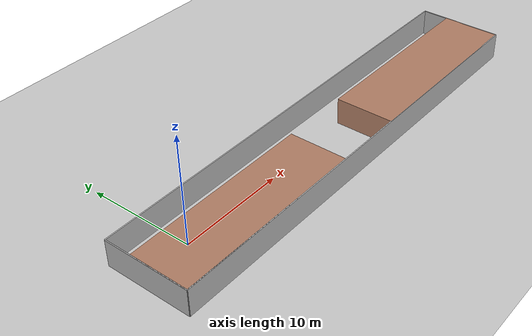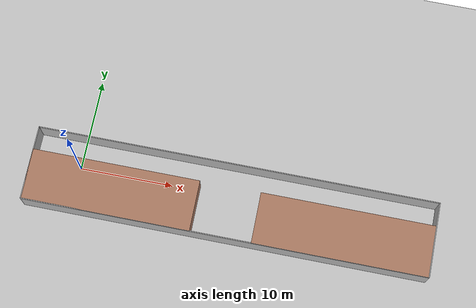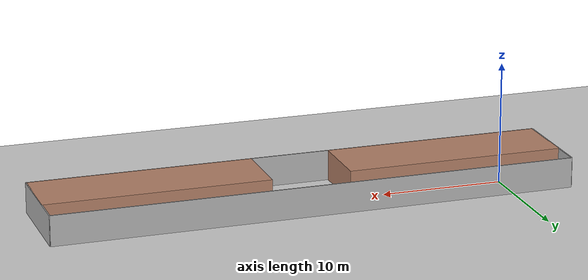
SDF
<?xml version="1.0" ?>
<sdf version="1.8">
  <world name="default">
    <!-- Physics -->
    <physics name="1ms" type="ignored">
      <max_step_size>0.001</max_step_size>
      <real_time_factor>1.0</real_time_factor>
    </physics>

    <!-- Plugins for gz-sim -->
    <plugin filename="gz-sim-physics-system" name="gz::sim::systems::Physics"/>
    <plugin filename="gz-sim-user-commands-system" name="gz::sim::systems::UserCommands"/>
    <plugin filename="gz-sim-scene-broadcaster-system" name="gz::sim::systems::SceneBroadcaster"/>
    <plugin filename="gz-sim-sensors-system" name="gz::sim::systems::Sensors">
      <render_engine>ogre2</render_engine>
    </plugin>

    <!-- Lighting -->
    <light type="directional" name="sun">
      <cast_shadows>true</cast_shadows>
      <pose>0 0 10 0 0 0</pose>
      <diffuse>0.8 0.8 0.8 1</diffuse>
      <specular>0.2 0.2 0.2 1</specular>
      <attenuation>
        <range>1000</range>
        <constant>0.9</constant>
        <linear>0.01</linear>
        <quadratic>0.001</quadratic>
      </attenuation>
      <direction>-0.5 0.1 -0.9</direction>
    </light>

    <!-- Ground Plane -->
    <model name="ground_plane">
      <static>true</static>
      <link name="link">
        <collision name="collision">
          <geometry>
            <plane>
              <normal>0 0 1</normal>
              <size>100 100</size>
            </plane>
          </geometry>
        </collision>
        <visual name="visual">
          <geometry>
            <plane>
              <normal>0 0 1</normal>
              <size>100 100</size>
            </plane>
          </geometry>
          <material>
            <ambient>0.8 0.8 0.8 1</ambient>
            <diffuse>0.8 0.8 0.8 1</diffuse>
          </material>
        </visual>
      </link>
    </model>

    <!-- ==================== WALLS ==================== -->
    <!-- Map: 86x16 pixels, 0.5m resolution, origin (-5,-5) -->
    <!-- World bounds: x from -5 to 38, y from -5 to 3 -->
    <!-- Vertical corridor opening at x = 13 to 19.5 -->

    <!-- Perimeter walls -->
    <!-- Bottom wall (y = -5) -->
    <model name="wall_bottom">
      <static>true</static>
      <pose>16.5 -5.0 1.25 0 0 0</pose>
      <link name="link">
        <collision name="collision">
          <geometry><box><size>43.0 0.1 2.5</size></box></geometry>
        </collision>
        <visual name="visual">
          <geometry><box><size>43.0 0.1 2.5</size></box></geometry>
          <material>
            <ambient>0.5 0.5 0.5 1</ambient>
            <diffuse>0.7 0.7 0.7 1</diffuse>
          </material>
        </visual>
      </link>
    </model>

    <!-- Top wall (y = 3) -->
    <model name="wall_top">
      <static>true</static>
      <pose>16.5 3.0 1.25 0 0 0</pose>
      <link name="link">
        <collision name="collision">
          <geometry><box><size>43.0 0.1 2.5</size></box></geometry>
        </collision>
        <visual name="visual">
          <geometry><box><size>43.0 0.1 2.5</size></box></geometry>
          <material>
            <ambient>0.5 0.5 0.5 1</ambient>
            <diffuse>0.7 0.7 0.7 1</diffuse>
          </material>
        </visual>
      </link>
    </model>

    <!-- Left wall (x = -5) -->
    <model name="wall_left">
      <static>true</static>
      <pose>-5.0 -1.0 1.25 0 0 0</pose>
      <link name="link">
        <collision name="collision">
          <geometry><box><size>0.1 8.0 2.5</size></box></geometry>
        </collision>
        <visual name="visual">
          <geometry><box><size>0.1 8.0 2.5</size></box></geometry>
          <material>
            <ambient>0.5 0.5 0.5 1</ambient>
            <diffuse>0.7 0.7 0.7 1</diffuse>
          </material>
        </visual>
      </link>
    </model>

    <!-- Right wall (x = 38) -->
    <model name="wall_right">
      <static>true</static>
      <pose>38.0 -1.0 1.25 0 0 0</pose>
      <link name="link">
        <collision name="collision">
          <geometry><box><size>0.1 8.0 2.5</size></box></geometry>
        </collision>
        <visual name="visual">
          <geometry><box><size>0.1 8.0 2.5</size></box></geometry>
          <material>
            <ambient>0.5 0.5 0.5 1</ambient>
            <diffuse>0.7 0.7 0.7 1</diffuse>
          </material>
        </visual>
      </link>
    </model>

    <!-- Left obstacle block (x = -5 to 13, y = -5 to 0.5) -->
    <!-- Creates the left side of the vertical corridor -->
    <model name="obstacle_left">
      <static>true</static>
      <pose>4.0 -2.25 1.25 0 0 0</pose>
      <link name="link">
        <collision name="collision">
          <geometry><box><size>18.0 5.5 2.5</size></box></geometry>
        </collision>
        <visual name="visual">
          <geometry><box><size>18.0 5.5 2.5</size></box></geometry>
          <material>
            <ambient>0.6 0.4 0.3 1</ambient>
            <diffuse>0.7 0.5 0.4 1</diffuse>
          </material>
        </visual>
      </link>
    </model>

    <!-- Right obstacle block (x = 19.5 to 38, y = -5 to 0.5) -->
    <!-- Creates the right side of the vertical corridor -->
    <model name="obstacle_right">
      <static>true</static>
      <pose>28.75 -2.25 1.25 0 0 0</pose>
      <link name="link">
        <collision name="collision">
          <geometry><box><size>18.5 5.5 2.5</size></box></geometry>
        </collision>
        <visual name="visual">
          <geometry><box><size>18.5 5.5 2.5</size></box></geometry>
          <material>
            <ambient>0.6 0.4 0.3 1</ambient>
            <diffuse>0.7 0.5 0.4 1</diffuse>
          </material>
        </visual>
      </link>
    </model>

  </world>
</sdf>
